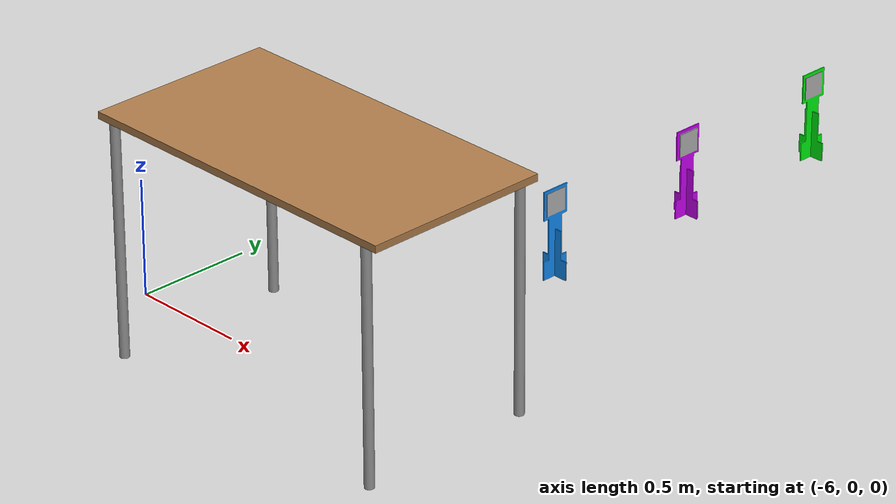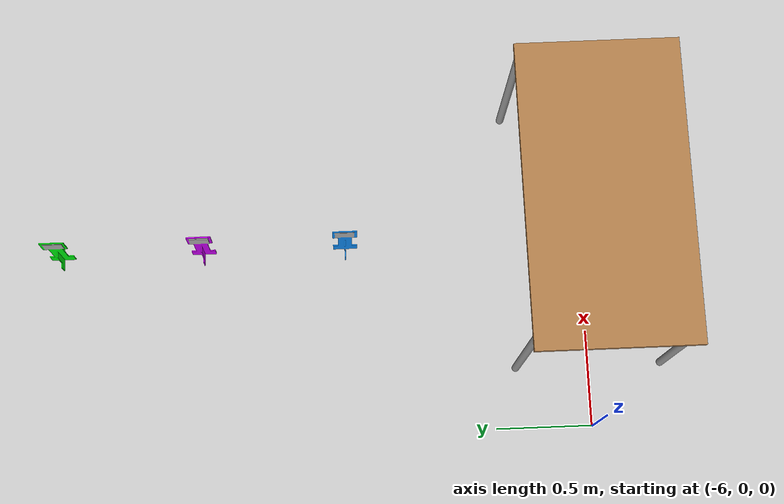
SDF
<sdf version="1.6">
 <world name="default">
  <model name="creeper01">
   <link name="link_0">
    <inertial>
     <mass>1</mass>
     <inertia>
      <ixx>0.166667</ixx>
      <ixy>0</ixy>
      <ixz>0</ixz>
      <iyy>0.166667</iyy>
      <iyz>0</iyz>
      <izz>0.166667</izz>
     </inertia>
    </inertial>
    <pose>5e-06 -5e-06 0 0 -0 0</pose>
    <visual name="visual">
     <geometry>
      <mesh>
       <uri>/home/borg/catkin_ws/src/my_simulation/models/mundoteste/creeper/creeper01/materials/textures/Creeper.dae</uri>
       <scale>1 1 1</scale>
      </mesh>
     </geometry>
     <material><lighting>1</lighting></material>
    </visual>
    <collision name="collision">
     <geometry>
      <mesh>
       <uri>/home/borg/catkin_ws/src/my_simulation/models/mundoteste/creeper/creeper01/materials/textures/Creeper.dae</uri>
       <scale>1 1 1</scale>
      </mesh>
     </geometry>
     <surface>
      <friction>
       <ode><mu>1</mu><mu2>1</mu2><fdir1>0 0 0</fdir1><slip1>0</slip1><slip2>0</slip2></ode>
       <torsional>
        <coefficient>1</coefficient>
        <patch_radius>0</patch_radius>
        <surface_radius>0</surface_radius>
        <use_patch_radius>1</use_patch_radius>
        <ode><slip>0</slip></ode>
       </torsional>
      </friction>
      <bounce><restitution_coefficient>0</restitution_coefficient><threshold>1e+06</threshold></bounce>
      <contact>
       <collide_without_contact>0</collide_without_contact>
       <collide_without_contact_bitmask>1</collide_without_contact_bitmask>
       <collide_bitmask>1</collide_bitmask>
       <ode>
        <soft_cfm>0</soft_cfm>
        <soft_erp>0.2</soft_erp>
        <kp>1e+13</kp>
        <kd>1</kd>
        <max_vel>0.01</max_vel>
        <min_depth>0</min_depth>
       </ode>
       <bullet>
        <split_impulse>1</split_impulse>
        <split_impulse_penetration_threshold>-0.01</split_impulse_penetration_threshold>
        <soft_cfm>0</soft_cfm>
        <soft_erp>0.2</soft_erp>
        <kp>1e+13</kp>
        <kd>1</kd>
       </bullet>
      </contact>
     </surface>
    </collision>
   </link>
   <static>0</static>
   <pose>-5 2 0.147771 -0 -3e-06 -5e-06</pose>
  </model>
  <model name="creeper02">
   <link name="link_0">
    <inertial>
     <mass>1</mass>
     <inertia>
      <ixx>0.166667</ixx>
      <ixy>0</ixy>
      <ixz>0</ixz>
      <iyy>0.166667</iyy>
      <iyz>0</iyz>
      <izz>0.166667</izz>
     </inertia>
    </inertial>
    <pose>5e-06 -5e-06 0 0 -0 0</pose>
    <visual name="visual">
     <geometry>
      <mesh>
       <uri>/home/borg/catkin_ws/src/my_simulation/models/mundoteste/creeper/creeper02/materials/textures/Creeper.dae</uri>
       <scale>1 1 1</scale>
      </mesh>
     </geometry>
     <material><lighting>1</lighting></material>
    </visual>
    <collision name="collision">
     <geometry>
      <mesh>
       <uri>/home/borg/catkin_ws/src/my_simulation/models/mundoteste/creeper/creeper02/materials/textures/Creeper.dae</uri>
       <scale>1 1 1</scale>
      </mesh>
     </geometry>
     <surface>
      <friction>
       <ode><mu>1</mu><mu2>1</mu2><fdir1>0 0 0</fdir1><slip1>0</slip1><slip2>0</slip2></ode>
       <torsional>
        <coefficient>1</coefficient>
        <patch_radius>0</patch_radius>
        <surface_radius>0</surface_radius>
        <use_patch_radius>1</use_patch_radius>
        <ode><slip>0</slip></ode>
       </torsional>
      </friction>
      <bounce><restitution_coefficient>0</restitution_coefficient><threshold>1e+06</threshold></bounce>
      <contact>
       <collide_without_contact>0</collide_without_contact>
       <collide_without_contact_bitmask>1</collide_without_contact_bitmask>
       <collide_bitmask>1</collide_bitmask>
       <ode>
        <soft_cfm>0</soft_cfm>
        <soft_erp>0.2</soft_erp>
        <kp>1e+13</kp>
        <kd>1</kd>
        <max_vel>0.01</max_vel>
        <min_depth>0</min_depth>
       </ode>
       <bullet>
        <split_impulse>1</split_impulse>
        <split_impulse_penetration_threshold>-0.01</split_impulse_penetration_threshold>
        <soft_cfm>0</soft_cfm>
        <soft_erp>0.2</soft_erp>
        <kp>1e+13</kp>
        <kd>1</kd>
       </bullet>
      </contact>
     </surface>
    </collision>
   </link>
   <static>0</static>
   <pose>-5 1.25 0.147772 8e-06 -1.3e-05 -2e-06</pose>
  </model>
  <model name="creeper03">
   <link name="link_0">
    <inertial>
     <mass>1</mass>
     <inertia>
      <ixx>0.166667</ixx>
      <ixy>0</ixy>
      <ixz>0</ixz>
      <iyy>0.166667</iyy>
      <iyz>0</iyz>
      <izz>0.166667</izz>
     </inertia>
    </inertial>
    <pose>5e-06 -5e-06 0 0 -0 0</pose>
    <visual name="visual">
     <geometry>
      <mesh>
       <uri>/home/borg/catkin_ws/src/my_simulation/models/mundoteste/creeper/creeper03/materials/textures/Creeper.dae</uri>
       <scale>1 1 1</scale>
      </mesh>
     </geometry>
     <material><lighting>1</lighting></material>
    </visual>
    <collision name="collision">
     <geometry>
      <mesh>
       <uri>/home/borg/catkin_ws/src/my_simulation/models/mundoteste/creeper/creeper03/materials/textures/Creeper.dae</uri>
       <scale>1 1 1</scale>
      </mesh>
     </geometry>
     <surface>
      <friction>
       <ode><mu>1</mu><mu2>1</mu2><fdir1>0 0 0</fdir1><slip1>0</slip1><slip2>0</slip2></ode>
       <torsional>
        <coefficient>1</coefficient>
        <patch_radius>0</patch_radius>
        <surface_radius>0</surface_radius>
        <use_patch_radius>1</use_patch_radius>
        <ode><slip>0</slip></ode>
       </torsional>
      </friction>
      <bounce><restitution_coefficient>0</restitution_coefficient><threshold>1e+06</threshold></bounce>
      <contact>
       <collide_without_contact>0</collide_without_contact>
       <collide_without_contact_bitmask>1</collide_without_contact_bitmask>
       <collide_bitmask>1</collide_bitmask>
       <ode>
        <soft_cfm>0</soft_cfm>
        <soft_erp>0.2</soft_erp>
        <kp>1e+13</kp>
        <kd>1</kd>
        <max_vel>0.01</max_vel>
        <min_depth>0</min_depth>
       </ode>
       <bullet>
        <split_impulse>1</split_impulse>
        <split_impulse_penetration_threshold>-0.01</split_impulse_penetration_threshold>
        <soft_cfm>0</soft_cfm>
        <soft_erp>0.2</soft_erp>
        <kp>1e+13</kp>
        <kd>1</kd>
       </bullet>
      </contact>
     </surface>
    </collision>
   </link>
   <static>0</static>
   <pose>-5 2.75 0.147761 0 -0 -1.3e-05</pose>
  </model>
  <model name="lab404">
   <model name="table">
    <static>1</static>
    <link name="link">
     <collision name="surface">
      <pose>0 0 1 0 -0 0</pose>
      <geometry><box><size>1.5 0.8 0.03</size></box></geometry>
      <surface><friction><ode><mu>0.6</mu><mu2>0.6</mu2></ode></friction></surface>
     </collision>
     <visual name="visual1">
      <pose>0 0 1 0 -0 0</pose>
      <geometry><box><size>1.5 0.8 0.03</size></box></geometry>
      <material>
       <script><uri>file://media/materials/scripts/gazebo.material</uri><name>Gazebo/Wood</name></script>
      </material>
     </visual>
     <collision name="front_left_leg">
      <pose>0.68 0.38 0.5 0 -0 0</pose>
      <geometry><cylinder><radius>0.02</radius><length>1</length></cylinder></geometry>
     </collision>
     <visual name="front_left_leg">
      <pose>0.68 0.38 0.5 0 -0 0</pose>
      <geometry><cylinder><radius>0.02</radius><length>1</length></cylinder></geometry>
      <material>
       <script><uri>file://media/materials/scripts/gazebo.material</uri><name>Gazebo/Grey</name></script>
      </material>
     </visual>
     <collision name="front_right_leg">
      <pose>0.68 -0.38 0.5 0 -0 0</pose>
      <geometry><cylinder><radius>0.02</radius><length>1</length></cylinder></geometry>
     </collision>
     <visual name="front_right_leg">
      <pose>0.68 -0.38 0.5 0 -0 0</pose>
      <geometry><cylinder><radius>0.02</radius><length>1</length></cylinder></geometry>
      <material>
       <script><uri>file://media/materials/scripts/gazebo.material</uri><name>Gazebo/Grey</name></script>
      </material>
     </visual>
     <collision name="back_right_leg">
      <pose>-0.68 -0.38 0.5 0 -0 0</pose>
      <geometry><cylinder><radius>0.02</radius><length>1</length></cylinder></geometry>
     </collision>
     <visual name="back_right_leg">
      <pose>-0.68 -0.38 0.5 0 -0 0</pose>
      <geometry><cylinder><radius>0.02</radius><length>1</length></cylinder></geometry>
      <material>
       <script><uri>file://media/materials/scripts/gazebo.material</uri><name>Gazebo/Grey</name></script>
      </material>
     </visual>
     <collision name="back_left_leg">
      <pose>-0.68 0.38 0.5 0 -0 0</pose>
      <geometry><cylinder><radius>0.02</radius><length>1</length></cylinder></geometry>
     </collision>
     <visual name="back_left_leg">
      <pose>-0.68 0.38 0.5 0 -0 0</pose>
      <geometry><cylinder><radius>0.02</radius><length>1</length></cylinder></geometry>
      <material>
       <script><uri>file://media/materials/scripts/gazebo.material</uri><name>Gazebo/Grey</name></script>
      </material>
     </visual>
    </link>
   </model>
   <static>0</static>
   <pose>-5 0 0 0 -0 0</pose>
  </model>
 </world>
</sdf>
